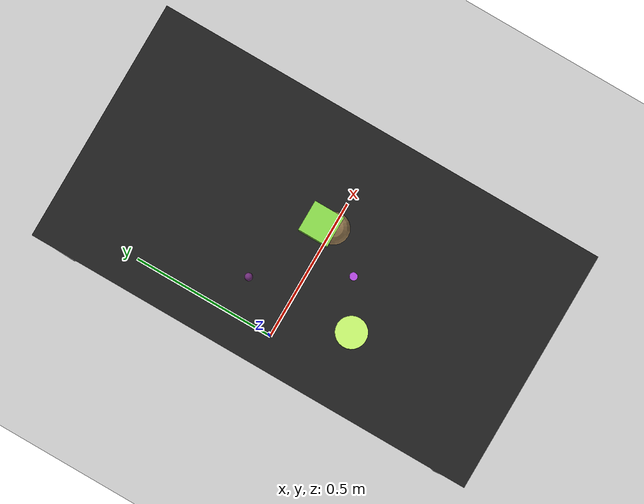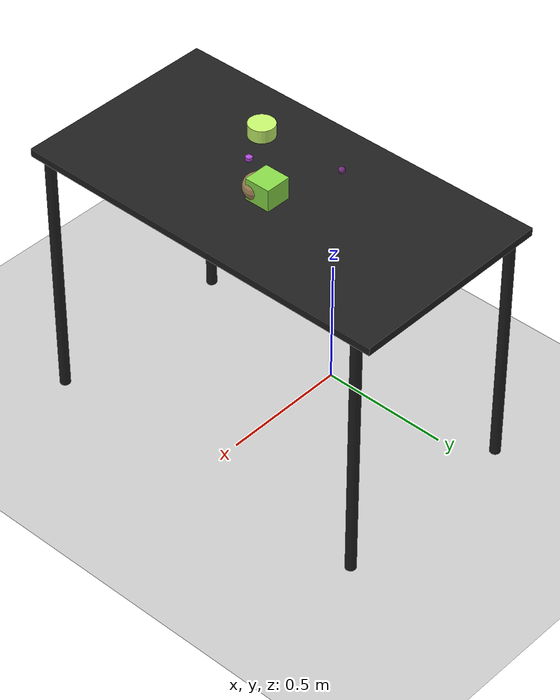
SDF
<?xml version="1.0" ?>
<sdf version="1.6">
  <world name="arm_world">
    <plugin filename="gz-sim-physics-system" name="gz::sim::systems::Physics">
      <engine>
        <filename>libgz-physics-bullet-featherstone-plugin.so</filename>
      </engine>
    </plugin>
    <plugin filename="gz-sim-user-commands-system" name="gz::sim::systems::UserCommands"/>
    <plugin filename="gz-sim-scene-broadcaster-system" name="gz::sim::systems::SceneBroadcaster"/>
    <plugin filename="gz-sim-sensors-system" name="gz::sim::systems::Sensors">
      <render_engine>ogre2</render_engine>
    </plugin>
    <gravity>0.0 0.0 -9.8</gravity>
    <scene>
      <shadows>false</shadows>
    </scene>
    <gui>
      <camera name="user_camera">
        <pose>0.75 -0.75 1.4 0 0.29 2.21</pose>
      </camera>
    </gui>
    <include>
      <uri>https://fuel.gazebosim.org/1.0/OpenRobotics/models/Sun</uri>
    </include>
    <model name="table">
      <static>true</static>
      <include>
        <uri>model://table</uri>
      </include>
      <pose>0.29 0 0 0 0 1.5708</pose>
    </model>
    <model name="ground_plane">
      <static>true</static>
      <link name="link">
        <collision name="collision">
          <geometry>
            <plane>
              <normal>0 0 1</normal>
            </plane>
          </geometry>
          <surface>
            <friction>
              <ode>
                <mu>1.0</mu>
                <mu2>1.0</mu2>
              </ode>
            </friction>
          </surface>
        </collision>
        <visual name="visual">
          <geometry>
            <plane>
              <normal>0 0 1</normal>
              <size>100 100</size>
            </plane>
          </geometry>
          <material>
            <ambient>0.8 0.8 0.8 1</ambient>
            <diffuse>0.8 0.8 0.8 1</diffuse>
            <specular>0.8 0.8 0.8 1</specular>
          </material>
        </visual>
      </link>
    </model>
    <model name="cylinder_l_0">
      <pose>0.12 -0.225 1.05 0 0 4.92</pose>
      <link name="cylinder_l_0_link">
        <inertial>
          <mass>0.05</mass>
          <inertia>
            <ixx>2.04e-7</ixx>
            <iyy>2.04e-7</iyy>
            <izz>3.9e-8</izz>
            <ixy>0</ixy>
            <ixz>0</ixz>
            <iyz>0</iyz>
          </inertia>
        </inertial>
        <collision name="cylinder_l_0_collision">
          <geometry>
            <cylinder>
              <radius>0.05</radius>
              <length>0.05</length>
            </cylinder>
          </geometry>
          <surface>
            <friction>
              <ode>
                <mu>0.8</mu>
                <mu2>0.8</mu2>
                <fdir1>0 0 1</fdir1>
                <slip1>0.001</slip1>
                <slip2>0.001</slip2>
              </ode>
              <torsional>
                <coefficient>0.1</coefficient>
                <surface_radius>0.015</surface_radius>
                <use_patch_radius>true</use_patch_radius>
              </torsional>
            </friction>
            <contact>
              <ode>
                <kp>1e5</kp>
                <kd>10</kd>
                <max_vel>0.1</max_vel>
                <min_depth>0.001</min_depth>
                <soft_cfm>0.01</soft_cfm>
                <soft_erp>0.2</soft_erp>
              </ode>
            </contact>
            <bounce>
              <restitution_coefficient>0.2</restitution_coefficient>
              <threshold>0.01</threshold>
            </bounce>
          </surface>
        </collision>
        <visual name="cylinder_l_0_visual">
          <geometry>
            <cylinder>
              <radius>0.05</radius>
              <length>0.05</length>
            </cylinder>
          </geometry>
          <material>
            <ambient>0.78 0.97 0.43 1</ambient>
            <diffuse>0.78 0.97 0.43 1</diffuse>
          </material>
        </visual>
        <velocity_decay>
          <linear>1</linear>
          <angular>1</angular>
        </velocity_decay>
      </link>
    </model>
    <model name="cube_l_1">
      <pose>0.354 0.016 1.05 0 0 3.14</pose>
      <link name="cube_l_1_link">
        <inertial>
          <mass>0.05</mass>
          <inertia>
            <ixx>2.04e-7</ixx>
            <iyy>2.04e-7</iyy>
            <izz>3.9e-8</izz>
            <ixy>0</ixy>
            <ixz>0</ixz>
            <iyz>0</iyz>
          </inertia>
        </inertial>
        <collision name="cube_l_1_collision">
          <geometry>
            <box>
              <size>0.1 0.1 0.1</size>
            </box>
          </geometry>
          <surface>
            <friction>
              <ode>
                <mu>0.8</mu>
                <mu2>0.8</mu2>
                <fdir1>0 0 1</fdir1>
                <slip1>0.001</slip1>
                <slip2>0.001</slip2>
              </ode>
              <torsional>
                <coefficient>0.1</coefficient>
                <surface_radius>0.015</surface_radius>
                <use_patch_radius>true</use_patch_radius>
              </torsional>
            </friction>
            <contact>
              <ode>
                <kp>1e5</kp>
                <kd>10</kd>
                <max_vel>0.1</max_vel>
                <min_depth>0.001</min_depth>
                <soft_cfm>0.01</soft_cfm>
                <soft_erp>0.2</soft_erp>
              </ode>
            </contact>
            <bounce>
              <restitution_coefficient>0.2</restitution_coefficient>
              <threshold>0.01</threshold>
            </bounce>
          </surface>
        </collision>
        <visual name="cube_l_1_visual">
          <geometry>
            <box>
              <size>0.1 0.1 0.1</size>
            </box>
          </geometry>
          <material>
            <ambient>0.54 0.86 0.29 1</ambient>
            <diffuse>0.54 0.86 0.29 1</diffuse>
          </material>
        </visual>
        <velocity_decay>
          <linear>1</linear>
          <angular>1</angular>
        </velocity_decay>
      </link>
    </model>
    <model name="sphere_s_2">
      <pose>0.109 0.124 1.05 0 0 0.7</pose>
      <link name="sphere_s_2_link">
        <inertial>
          <mass>0.05</mass>
          <inertia>
            <ixx>2.04e-7</ixx>
            <iyy>2.04e-7</iyy>
            <izz>3.9e-8</izz>
            <ixy>0</ixy>
            <ixz>0</ixz>
            <iyz>0</iyz>
          </inertia>
        </inertial>
        <collision name="sphere_s_2_collision">
          <geometry>
            <sphere>
              <radius>0.0125</radius>
            </sphere>
          </geometry>
          <surface>
            <friction>
              <ode>
                <mu>0.8</mu>
                <mu2>0.8</mu2>
                <fdir1>0 0 1</fdir1>
                <slip1>0.001</slip1>
                <slip2>0.001</slip2>
              </ode>
              <torsional>
                <coefficient>0.1</coefficient>
                <surface_radius>0.015</surface_radius>
                <use_patch_radius>true</use_patch_radius>
              </torsional>
            </friction>
            <contact>
              <ode>
                <kp>1e5</kp>
                <kd>10</kd>
                <max_vel>0.1</max_vel>
                <min_depth>0.001</min_depth>
                <soft_cfm>0.01</soft_cfm>
                <soft_erp>0.2</soft_erp>
              </ode>
            </contact>
            <bounce>
              <restitution_coefficient>0.2</restitution_coefficient>
              <threshold>0.01</threshold>
            </bounce>
          </surface>
        </collision>
        <visual name="sphere_s_2_visual">
          <geometry>
            <sphere>
              <radius>0.0125</radius>
            </sphere>
          </geometry>
          <material>
            <ambient>0.42 0.17 0.46 1</ambient>
            <diffuse>0.42 0.17 0.46 1</diffuse>
          </material>
        </visual>
        <velocity_decay>
          <linear>1</linear>
          <angular>1</angular>
        </velocity_decay>
      </link>
    </model>
    <model name="sphere_l_3">
      <pose>0.363 -0.022 1.05 0 0 1.86</pose>
      <link name="sphere_l_3_link">
        <inertial>
          <mass>0.05</mass>
          <inertia>
            <ixx>2.04e-7</ixx>
            <iyy>2.04e-7</iyy>
            <izz>3.9e-8</izz>
            <ixy>0</ixy>
            <ixz>0</ixz>
            <iyz>0</iyz>
          </inertia>
        </inertial>
        <collision name="sphere_l_3_collision">
          <geometry>
            <sphere>
              <radius>0.05</radius>
            </sphere>
          </geometry>
          <surface>
            <friction>
              <ode>
                <mu>0.8</mu>
                <mu2>0.8</mu2>
                <fdir1>0 0 1</fdir1>
                <slip1>0.001</slip1>
                <slip2>0.001</slip2>
              </ode>
              <torsional>
                <coefficient>0.1</coefficient>
                <surface_radius>0.015</surface_radius>
                <use_patch_radius>true</use_patch_radius>
              </torsional>
            </friction>
            <contact>
              <ode>
                <kp>1e5</kp>
                <kd>10</kd>
                <max_vel>0.1</max_vel>
                <min_depth>0.001</min_depth>
                <soft_cfm>0.01</soft_cfm>
                <soft_erp>0.2</soft_erp>
              </ode>
            </contact>
            <bounce>
              <restitution_coefficient>0.2</restitution_coefficient>
              <threshold>0.01</threshold>
            </bounce>
          </surface>
        </collision>
        <visual name="sphere_l_3_visual">
          <geometry>
            <sphere>
              <radius>0.05</radius>
            </sphere>
          </geometry>
          <material>
            <ambient>0.63 0.51 0.34 1</ambient>
            <diffuse>0.63 0.51 0.34 1</diffuse>
          </material>
        </visual>
        <velocity_decay>
          <linear>1</linear>
          <angular>1</angular>
        </velocity_decay>
      </link>
    </model>
    <model name="cylinder_s_4">
      <pose>0.268 -0.146 1.05 0 0 1.11</pose>
      <link name="cylinder_s_4_link">
        <inertial>
          <mass>0.05</mass>
          <inertia>
            <ixx>2.04e-7</ixx>
            <iyy>2.04e-7</iyy>
            <izz>3.9e-8</izz>
            <ixy>0</ixy>
            <ixz>0</ixz>
            <iyz>0</iyz>
          </inertia>
        </inertial>
        <collision name="cylinder_s_4_collision">
          <geometry>
            <cylinder>
              <radius>0.0125</radius>
              <length>0.0125</length>
            </cylinder>
          </geometry>
          <surface>
            <friction>
              <ode>
                <mu>0.8</mu>
                <mu2>0.8</mu2>
                <fdir1>0 0 1</fdir1>
                <slip1>0.001</slip1>
                <slip2>0.001</slip2>
              </ode>
              <torsional>
                <coefficient>0.1</coefficient>
                <surface_radius>0.015</surface_radius>
                <use_patch_radius>true</use_patch_radius>
              </torsional>
            </friction>
            <contact>
              <ode>
                <kp>1e5</kp>
                <kd>10</kd>
                <max_vel>0.1</max_vel>
                <min_depth>0.001</min_depth>
                <soft_cfm>0.01</soft_cfm>
                <soft_erp>0.2</soft_erp>
              </ode>
            </contact>
            <bounce>
              <restitution_coefficient>0.2</restitution_coefficient>
              <threshold>0.01</threshold>
            </bounce>
          </surface>
        </collision>
        <visual name="cylinder_s_4_visual">
          <geometry>
            <cylinder>
              <radius>0.0125</radius>
              <length>0.0125</length>
            </cylinder>
          </geometry>
          <material>
            <ambient>0.7 0.28 0.88 1</ambient>
            <diffuse>0.7 0.28 0.88 1</diffuse>
          </material>
        </visual>
        <velocity_decay>
          <linear>1</linear>
          <angular>1</angular>
        </velocity_decay>
      </link>
    </model>
  </world>
</sdf>

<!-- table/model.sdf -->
<sdf version="1.5">
  <model name="table">
    <static>true</static>
    <link name="link">
      <collision name="surface">
        <pose>0 0 1.0 0 0 0</pose>
        <geometry>
          <box>
            <size>1.5 0.8 0.03</size>
          </box>
        </geometry>
        <surface>
          <friction>
            <ode>
              <mu>0.6</mu>
              <mu2>0.6</mu2>
            </ode>
          </friction>
        </surface>
      </collision>
      <visual name="surface">
        <pose>0 0 1.0 0 0 0</pose>
        <geometry>
          <box>
            <size>1.5 0.8 0.03</size>
          </box>
        </geometry>
        <material>
          <script>
            <uri>file://media/materials/scripts/gazebo.material</uri>
            <name>Gazebo/Black</name>
          </script>
        </material>
      </visual>
      <collision name="front_left_leg">
        <pose>0.68 0.38 0.5 0 0 0</pose>
        <geometry>
          <cylinder>
            <radius>0.02</radius>
            <length>1.0</length>
          </cylinder>
        </geometry>
      </collision>
      <visual name="front_left_leg">
        <pose>0.68 0.38 0.5 0 0 0</pose>
        <geometry>
          <cylinder>
            <radius>0.02</radius>
            <length>1.0</length>
          </cylinder>
        </geometry>
        <material>
          <script>
            <uri>file://media/materials/scripts/gazebo.material</uri>
            <name>Gazebo/Black</name>
          </script>
        </material>
      </visual>
      <collision name="front_right_leg">
        <pose>0.68 -0.38 0.5 0 0 0</pose>
        <geometry>
          <cylinder>
            <radius>0.02</radius>
            <length>1.0</length>
          </cylinder>
        </geometry>
      </collision>
      <visual name="front_right_leg">
        <pose>0.68 -0.38 0.5 0 0 0</pose>
        <geometry>
          <cylinder>
            <radius>0.02</radius>
            <length>1.0</length>
          </cylinder>
        </geometry>
        <material>
          <script>
            <uri>file://media/materials/scripts/gazebo.material</uri>
            <name>Gazebo/Black</name>
          </script>
        </material>
      </visual>
      <collision name="back_right_leg">
        <pose>-0.68 -0.38 0.5 0 0 0</pose>
        <geometry>
          <cylinder>
            <radius>0.02</radius>
            <length>1.0</length>
          </cylinder>
        </geometry>
      </collision>
      <visual name="back_right_leg">
        <pose>-0.68 -0.38 0.5 0 0 0</pose>
        <geometry>
          <cylinder>
            <radius>0.02</radius>
            <length>1.0</length>
          </cylinder>
        </geometry>
        <material>
          <script>
            <uri>file://media/materials/scripts/gazebo.material</uri>
            <name>Gazebo/Black</name>
          </script>
        </material>
      </visual>
      <collision name="back_left_leg">
        <pose>-0.68 0.38 0.5 0 0 0</pose>
        <geometry>
          <cylinder>
            <radius>0.02</radius>
            <length>1.0</length>
          </cylinder>
        </geometry>
      </collision>
      <visual name="back_left_leg">
        <pose>-0.68 0.38 0.5 0 0 0</pose>
        <geometry>
          <cylinder>
            <radius>0.02</radius>
            <length>1.0</length>
          </cylinder>
        </geometry>
        <material>
          <script>
            <uri>file://media/materials/scripts/gazebo.material</uri>
            <name>Gazebo/Black</name>
          </script>
        </material>
      </visual>
    </link>
  </model>
</sdf>
